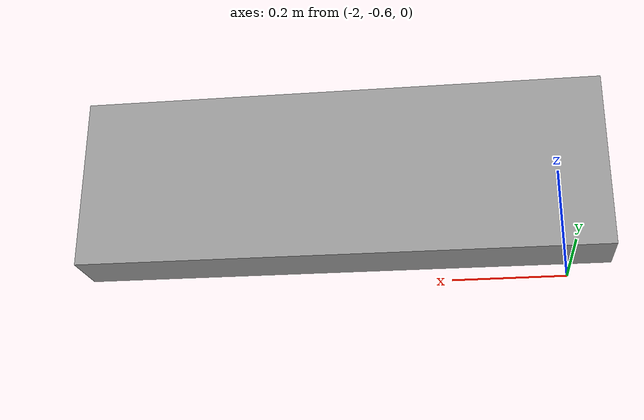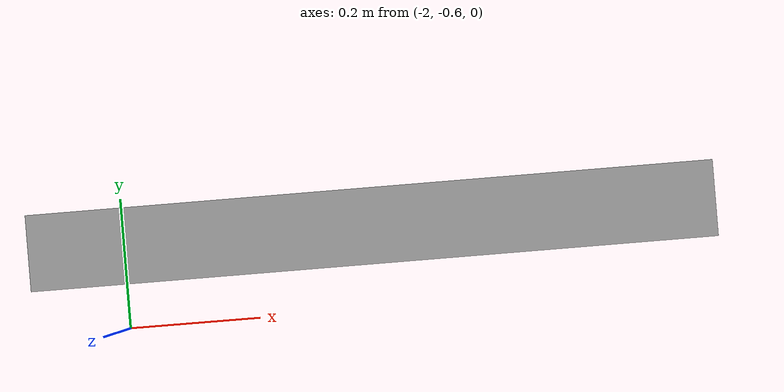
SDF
<?xml version='1.0'?>
<sdf version='1.7'>
  <model name='9'>
    <pose>-1.0337 -0.26413 0 0 -0 0</pose>
    <link name='Wall_33'>
      <collision name='Wall_33_Collision'>
        <geometry>
          <box>
            <size>0.9 0.1 0.3</size>
          </box>
        </geometry>
        <pose>0 0 0.15 0 -0 0</pose>
      </collision>
      <visual name='Wall_33_Visual'>
        <pose>0 0 0.15 0 -0 0</pose>
        <geometry>
          <box>
            <size>0.9 0.1 0.3</size>
          </box>
        </geometry>
        <material>
          <script>
            <uri>file://media/materials/scripts/gazebo.material</uri>
            <name>Gazebo/Grey</name>
          </script>
          <ambient>1 1 1 1</ambient>
        </material>
        <meta>
          <layer>0</layer>
        </meta>
      </visual>
      <pose>-0.583696 -0.21413 0 0 -0 0</pose>
    </link>
    <static>1</static>
  </model>
</sdf>
